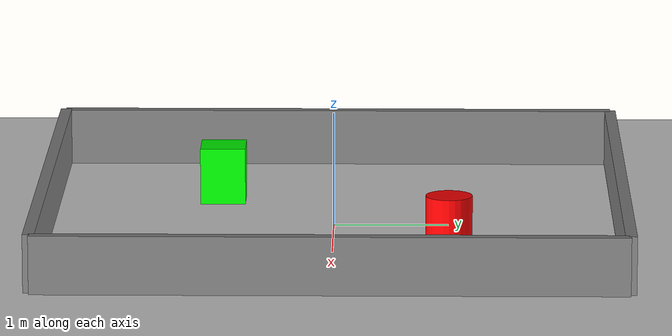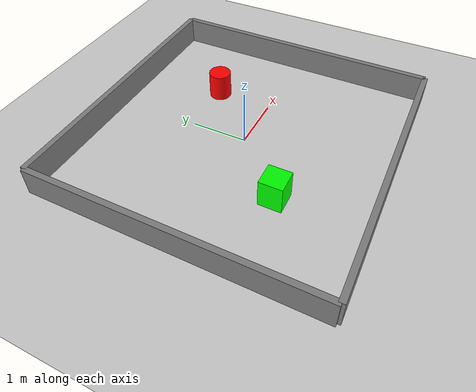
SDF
<?xml version="1.0"?>
<sdf version="1.6">
  <world name="slam_world">
    <physics type="ode">
      <max_step_size>0.001</max_step_size>
      <real_time_factor>1</real_time_factor>
    </physics>

    <include><uri>model://ground_plane</uri></include>
    <include><uri>model://sun</uri></include>

    <!-- 외곽 벽: 북 -->
    <model name="north_wall">
      <static>true</static>
      <pose>0 2.5 0.25 0 0 0</pose>
      <link name="link">
        <collision name="collision">
          <geometry><box><size>5.0 0.1 0.5</size></box></geometry>
        </collision>
        <visual name="visual">
          <geometry><box><size>5.0 0.1 0.5</size></box></geometry>
          <material><ambient>0.5 0.5 0.5 1</ambient></material>
        </visual>
      </link>
    </model>

    <!-- 외곽 벽: 남 -->
    <model name="south_wall">
      <static>true</static>
      <pose>0 -2.5 0.25 0 0 0</pose>
      <link name="link">
        <collision name="collision">
          <geometry><box><size>5.0 0.1 0.5</size></box></geometry>
        </collision>
        <visual name="visual">
          <geometry><box><size>5.0 0.1 0.5</size></box></geometry>
          <material><ambient>0.5 0.5 0.5 1</ambient></material>
        </visual>
      </link>
    </model>

    <!-- 외곽 벽: 동 -->
    <model name="east_wall">
      <static>true</static>
      <pose>2.5 0 0.25 0 0 0</pose>
      <link name="link">
        <collision name="collision">
          <geometry><box><size>0.1 5.0 0.5</size></box></geometry>
        </collision>
        <visual name="visual">
          <geometry><box><size>0.1 5.0 0.5</size></box></geometry>
          <material><ambient>0.5 0.5 0.5 1</ambient></material>
        </visual>
      </link>
    </model>

    <!-- 외곽 벽: 서 -->
    <model name="west_wall">
      <static>true</static>
      <pose>-2.5 0 0.25 0 0 0</pose>
      <link name="link">
        <collision name="collision">
          <geometry><box><size>0.1 5.0 0.5</size></box></geometry>
        </collision>
        <visual name="visual">
          <geometry><box><size>0.1 5.0 0.5</size></box></geometry>
          <material><ambient>0.5 0.5 0.5 1</ambient></material>
        </visual>
      </link>
    </model>

    <!-- 내부 장애물: 원통 -->
    <model name="cylinder1">
      <pose>1.0 1.0 0.25 0 0 0</pose>
      <static>true</static>
      <link name="link">
        <collision name="collision">
          <geometry><cylinder><radius>0.2</radius><length>0.5</length></cylinder></geometry>
        </collision>
        <visual name="visual">
          <geometry><cylinder><radius>0.2</radius><length>0.5</length></cylinder></geometry>
          <material><ambient>1 0 0 1</ambient></material>
        </visual>
      </link>
    </model>

    <!-- 내부 장애물: 사각 기둥 -->
    <model name="box1">
      <pose>-1.0 -1.0 0.25 0 0 0</pose>
      <static>true</static>
      <link name="link">
        <collision name="collision">
          <geometry><box><size>0.4 0.4 0.5</size></box></geometry>
        </collision>
        <visual name="visual">
          <geometry><box><size>0.4 0.4 0.5</size></box></geometry>
          <material><ambient>0 1 0 1</ambient></material>
        </visual>
      </link>
    </model>
  </world>
</sdf>
